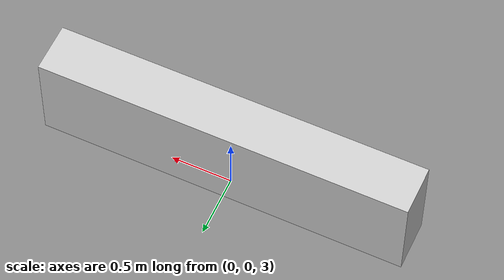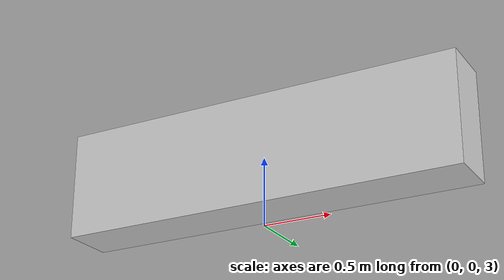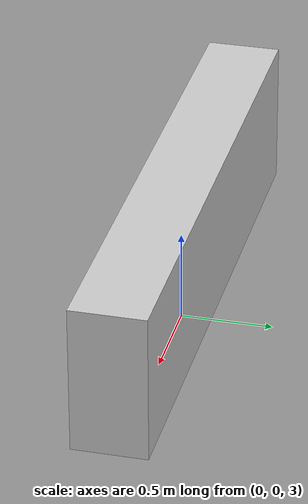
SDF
<?xml version="1.0" ?>
<sdf version="1.7">
    <model name="ground_rock">
      <static>true</static>
      <pose>0 0 3.5 0 0 0</pose>
      <link name="ground_rock_link">
        <inertial>
          <inertia>
            <ixx>1</ixx>
            <ixy>0</ixy>
            <ixz>0</ixz>
            <iyy>1</iyy>
            <iyz>0</iyz>
            <izz>1</izz>
          </inertia>
          <mass>1.0</mass>
        </inertial>
        <collision name="ground_rock_collision">
          <geometry>
            <mesh>
              <uri>file:///root/ignition_textures/ground_rock/meshes/wall.dae</uri>
            </mesh>
          </geometry>
        </collision>
        <visual name="ground_rock_visual">
          <geometry>
            <mesh>
              <uri>file:///root/ignition_textures/ground_rock/meshes/wall.dae</uri>
            </mesh>
          </geometry>
            <material>
              <diffuse>0.8 0.8 0.8 1</diffuse>
              <specular>0.6 0.6 0.6 1</specular>
              <ambient>1.0 1.0 1.0</ambient>
              <lighting>true</lighting>
              <emissive>0 0 0 1</emissive>
              <pbr>
                <metal>
                  <albedo_map>file:///root/ignition_textures/ground_rock/materials/textures/WallMedieval003_COL_VAR1_3K.jpg</albedo_map>
                  <normal_map >file:///root/ignition_textures/ground_rock/materials/textures/WallMedieval003_NRM_3K.jpg</normal_map>
                  <ambient_occlusion_map>file:///root/ignition_textures/ground_rock/materials/textures/WallMedieval003_AO_3K.jpg</ambient_occlusion_map>
                  <roughness_map>file:///root/ignition_textures/ground_rock/materials/textures/WallMedieval003_GLOSS_3K.jpg</roughness_map>
                  <roughness>0.5</roughness>
                </metal>
              </pbr>
              <script>
                <uri>file:///root/ignition_textures/ground_rock/materials/scripts</uri>
                <uri>file:///root/ignition_textures/ground_rock/materials/textures</uri>
                <name>GroundRock/Diffuse</name>
            </script>
            </material>
        </visual>
      </link>
    </model>
</sdf>
